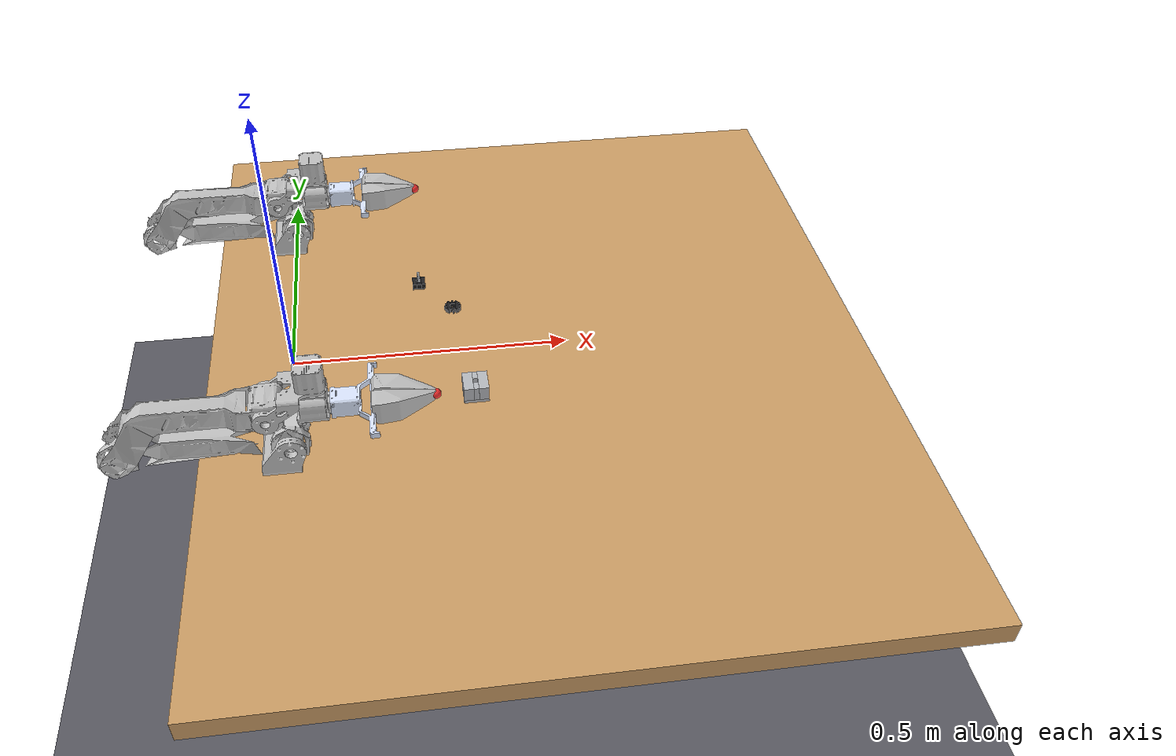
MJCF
<mujoco model="panthera_bimanual">
  <compiler angle="radian"/>

  <option impratio="100" integrator="implicitfast" cone="elliptic"/>

  <size nkey="2"/>

  <visual>
    <global offwidth="1920" offheight="1080"/>
    <headlight ambient="0.15 0.15 0.15" diffuse="0.25 0.25 0.25"/>
  </visual>

  <default>
    <default class="left/main">
      <joint armature="0.05" damping="0.2" frictionloss="0.1"/>
      <general biastype="affine"/>
      <default class="left/visual">
        <geom type="mesh" contype="0" conaffinity="0" group="2" density="0"/>
      </default>
      <default class="left/collision">
        <geom type="mesh" condim="4" group="3" friction="1 0.05 0.001"/>
      </default>
    </default>
    <default class="right/main">
      <joint armature="0.05" damping="0.2" frictionloss="0.1"/>
      <general biastype="affine"/>
      <default class="right/visual">
        <geom type="mesh" contype="0" conaffinity="0" group="2" density="0"/>
      </default>
      <default class="right/collision">
        <geom type="mesh" condim="4" group="3" friction="1 0.05 0.001"/>
      </default>
    </default>
  </default>

  <asset>
    <mesh name="left/base_link" content_type="model/stl" file="meshes/visual/base_link.STL"/>
    <mesh name="left/link1" content_type="model/stl" file="meshes/visual/link1.STL"/>
    <mesh name="left/link2" content_type="model/stl" file="meshes/visual/link2.STL"/>
    <mesh name="left/link3" content_type="model/stl" file="meshes/visual/link3.STL"/>
    <mesh name="left/link4" content_type="model/stl" file="meshes/visual/link4.STL"/>
    <mesh name="left/link5" content_type="model/stl" file="meshes/visual/link5.STL"/>
    <mesh name="left/link6" content_type="model/stl" file="meshes/visual/link6.STL"/>
    <mesh name="left/L_finger" content_type="model/stl" file="meshes/visual/L_finger.STL"/>
    <mesh name="left/R_finger" content_type="model/stl" file="meshes/visual/R_finger.STL"/>
    <mesh name="left/gripper_center" content_type="model/stl" file="meshes/visual/gripper_center.STL"/>
    <mesh name="left/base_link_col" content_type="model/stl" file="meshes/collision/base_link.STL"/>
    <mesh name="left/link1_col" content_type="model/stl" file="meshes/collision/link1.STL"/>
    <mesh name="left/link2_col" content_type="model/stl" file="meshes/collision/link2.STL"/>
    <mesh name="left/link3_col" content_type="model/stl" file="meshes/collision/link3.STL"/>
    <mesh name="left/link4_col" content_type="model/stl" file="meshes/collision/link4.STL"/>
    <mesh name="left/link5_col" content_type="model/stl" file="meshes/collision/link5.STL"/>
    <mesh name="left/link6_col" content_type="model/stl" file="meshes/collision/link6.STL"/>
    <mesh name="left/L_finger_col" content_type="model/stl" file="meshes/collision/L_finger.STL"/>
    <mesh name="left/R_finger_col" content_type="model/stl" file="meshes/collision/R_finger.STL"/>
    <mesh name="left/gripper_center_col" content_type="model/stl" file="meshes/collision/gripper_center.STL"/>
    <mesh name="right/base_link" content_type="model/stl" file="meshes/visual/base_link.STL"/>
    <mesh name="right/link1" content_type="model/stl" file="meshes/visual/link1.STL"/>
    <mesh name="right/link2" content_type="model/stl" file="meshes/visual/link2.STL"/>
    <mesh name="right/link3" content_type="model/stl" file="meshes/visual/link3.STL"/>
    <mesh name="right/link4" content_type="model/stl" file="meshes/visual/link4.STL"/>
    <mesh name="right/link5" content_type="model/stl" file="meshes/visual/link5.STL"/>
    <mesh name="right/link6" content_type="model/stl" file="meshes/visual/link6.STL"/>
    <mesh name="right/L_finger" content_type="model/stl" file="meshes/visual/L_finger.STL"/>
    <mesh name="right/R_finger" content_type="model/stl" file="meshes/visual/R_finger.STL"/>
    <mesh name="right/gripper_center" content_type="model/stl" file="meshes/visual/gripper_center.STL"/>
    <mesh name="right/base_link_col" content_type="model/stl" file="meshes/collision/base_link.STL"/>
    <mesh name="right/link1_col" content_type="model/stl" file="meshes/collision/link1.STL"/>
    <mesh name="right/link2_col" content_type="model/stl" file="meshes/collision/link2.STL"/>
    <mesh name="right/link3_col" content_type="model/stl" file="meshes/collision/link3.STL"/>
    <mesh name="right/link4_col" content_type="model/stl" file="meshes/collision/link4.STL"/>
    <mesh name="right/link5_col" content_type="model/stl" file="meshes/collision/link5.STL"/>
    <mesh name="right/link6_col" content_type="model/stl" file="meshes/collision/link6.STL"/>
    <mesh name="right/L_finger_col" content_type="model/stl" file="meshes/collision/L_finger.STL"/>
    <mesh name="right/R_finger_col" content_type="model/stl" file="meshes/collision/R_finger.STL"/>
    <mesh name="right/gripper_center_col" content_type="model/stl" file="meshes/collision/gripper_center.STL"/>
  </asset>

  <worldbody>
    <geom name="floor" size="0 0 0.05" pos="0 0 -0.75" type="plane" rgba="0.35 0.35 0.38 1"/>
    <camera name="overhead" quat="0.60804 0.360953 -0.360953 -0.60804" pos="-0.8 0 1" fovy="35"/>
    <light pos="0.45 0 2" diffuse="0.45 0.45 0.45" type="directional"/>
    <light pos="0.45 0.5 1.5" dir="0 -0.287348 -0.957826" diffuse="0.15 0.15 0.15"/>
    <body name="table" pos="0.45 0 -0.02">
      <geom name="table_top" size="0.6 0.7 0.02" type="box" friction="0.4 0.02 0.0005" rgba="0.8 0.62 0.4 1"/>
    </body>
    <body name="carrier" pos="0.32 -0.12 0.016">
      <joint name="carrier" type="free"/>
      <geom name="carrier" size="0.022 0.022 0.003" pos="0 0 -0.013" type="box" condim="6" friction="0.8 0.08 0.004" solref="0.005" solimp="0.98 0.99" rgba="0.72 0.73 0.75 1" density="2700"/>
      <geom name="carrier_top_x+1" size="0.00875 0.022 0.013" pos="0.01325 0 0.003" type="box" condim="6" friction="0.8 0.08 0.004" solref="0.005" solimp="0.98 0.99" rgba="0.72 0.73 0.75 1" density="2700"/>
      <geom name="carrier_top_y+1" size="0.0045 0.00875 0.013" pos="0 0.01325 0.003" type="box" condim="6" friction="0.8 0.08 0.004" solref="0.005" solimp="0.98 0.99" rgba="0.72 0.73 0.75 1" density="2700"/>
      <geom name="carrier_top_x-1" size="0.00875 0.022 0.013" pos="-0.01325 0 0.003" type="box" condim="6" friction="0.8 0.08 0.004" solref="0.005" solimp="0.98 0.99" rgba="0.72 0.73 0.75 1" density="2700"/>
      <geom name="carrier_top_y-1" size="0.0045 0.00875 0.013" pos="0 -0.01325 0.003" type="box" condim="6" friction="0.8 0.08 0.004" solref="0.005" solimp="0.98 0.99" rgba="0.72 0.73 0.75 1" density="2700"/>
      <site name="carrier_hole" size="0.002" pos="0 0 0.016" group="4"/>
    </body>
    <body name="gear" pos="0.3 0.12 0.004">
      <joint name="gear" type="free"/>
      <geom name="gear_x+1" size="0.003 0.011 0.004" pos="0.008 0 0" type="box" condim="6" friction="0.8 0.08 0.004" solref="0.005" solimp="0.98 0.99" rgba="0.12 0.12 0.13 1" density="1200"/>
      <geom name="gear_y+1" size="0.005 0.003 0.004" pos="0 0.008 0" type="box" condim="6" friction="0.8 0.08 0.004" solref="0.005" solimp="0.98 0.99" rgba="0.12 0.12 0.13 1" density="1200"/>
      <geom name="gear_x-1" size="0.003 0.011 0.004" pos="-0.008 0 0" type="box" condim="6" friction="0.8 0.08 0.004" solref="0.005" solimp="0.98 0.99" rgba="0.12 0.12 0.13 1" density="1200"/>
      <geom name="gear_y-1" size="0.005 0.003 0.004" pos="0 -0.008 0" type="box" condim="6" friction="0.8 0.08 0.004" solref="0.005" solimp="0.98 0.99" rgba="0.12 0.12 0.13 1" density="1200"/>
      <geom size="0.0022 0.0015 0.0036" pos="0.01375 0 0" type="box" contype="0" conaffinity="0" group="2" rgba="0.12 0.12 0.13 1"/>
      <geom size="0.0022 0.0015 0.0036" pos="0.0119078 0.006875 0" quat="0.965926 0 0 0.258819" type="box" contype="0" conaffinity="0" group="2" rgba="0.12 0.12 0.13 1"/>
      <geom size="0.0022 0.0015 0.0036" pos="0.006875 0.0119078 0" quat="0.866025 0 0 0.5" type="box" contype="0" conaffinity="0" group="2" rgba="0.12 0.12 0.13 1"/>
      <geom size="0.0022 0.0015 0.0036" pos="0 0.01375 0" quat="0.707107 0 0 0.707107" type="box" contype="0" conaffinity="0" group="2" rgba="0.12 0.12 0.13 1"/>
      <geom size="0.0022 0.0015 0.0036" pos="-0.006875 0.0119078 0" quat="0.5 0 0 0.866025" type="box" contype="0" conaffinity="0" group="2" rgba="0.12 0.12 0.13 1"/>
      <geom size="0.0022 0.0015 0.0036" pos="-0.0119078 0.006875 0" quat="0.258819 0 0 0.965926" type="box" contype="0" conaffinity="0" group="2" rgba="0.12 0.12 0.13 1"/>
      <geom size="0.0022 0.0015 0.0036" pos="-0.01375 0 0" quat="0 0 0 1" type="box" contype="0" conaffinity="0" group="2" rgba="0.12 0.12 0.13 1"/>
      <geom size="0.0022 0.0015 0.0036" pos="-0.0119078 -0.006875 0" quat="-0.258819 0 0 0.965926" type="box" contype="0" conaffinity="0" group="2" rgba="0.12 0.12 0.13 1"/>
      <geom size="0.0022 0.0015 0.0036" pos="-0.006875 -0.0119078 0" quat="-0.5 0 0 0.866025" type="box" contype="0" conaffinity="0" group="2" rgba="0.12 0.12 0.13 1"/>
      <geom size="0.0022 0.0015 0.0036" pos="0 -0.01375 0" quat="-0.707107 0 0 0.707107" type="box" contype="0" conaffinity="0" group="2" rgba="0.12 0.12 0.13 1"/>
      <geom size="0.0022 0.0015 0.0036" pos="0.006875 -0.0119078 0" quat="-0.866025 0 0 0.5" type="box" contype="0" conaffinity="0" group="2" rgba="0.12 0.12 0.13 1"/>
      <geom size="0.0022 0.0015 0.0036" pos="0.0119078 -0.006875 0" quat="-0.965926 0 0 0.258819" type="box" contype="0" conaffinity="0" group="2" rgba="0.12 0.12 0.13 1"/>
      <site name="gear_bore" size="0.002" pos="0 0 0.004" group="4"/>
    </body>
    <body name="pin_stand" pos="0.24 0.2 0.006">
      <geom name="pin_stand_floor" size="0.012 0.012 0.001" pos="0 0 -0.005" type="box" rgba="0.12 0.12 0.13 1"/>
      <geom name="pin_stand_x+1" size="0.00375 0.012 0.005" pos="0.00825 0 0.001" type="box" rgba="0.12 0.12 0.13 1"/>
      <geom name="pin_stand_y+1" size="0.0045 0.00375 0.005" pos="0 0.00825 0.001" type="box" rgba="0.12 0.12 0.13 1"/>
      <geom name="pin_stand_x-1" size="0.00375 0.012 0.005" pos="-0.00825 0 0.001" type="box" rgba="0.12 0.12 0.13 1"/>
      <geom name="pin_stand_y-1" size="0.0045 0.00375 0.005" pos="0 -0.00825 0.001" type="box" rgba="0.12 0.12 0.13 1"/>
    </body>
    <body name="pin" pos="0.24 0.2 0.0175">
      <joint name="pin" type="free"/>
      <geom name="pin" size="0.0025 0.013" type="capsule" condim="6" friction="0.8 0.08 0.004" solref="0.005" solimp="0.98 0.99" rgba="0.72 0.73 0.75 1" density="7800"/>
      <site name="pin_tip" size="0.002" pos="0 0 -0.0155" group="4"/>
    </body>
    <frame pos="0 0.2875 0">
      <body name="left/link1" pos="0 0 0.0584">
        <inertial pos="0.00278873 -0.00094387 0.0249184" quat="0.692661 0.650108 0.225614 -0.216051" mass="0.281016" diaginertia="0.000421358 0.000343661 0.000213101"/>
        <joint name="left/joint1" range="-2.4 2.4" actuatorfrcrange="-21 21" armature="0.05" damping="0.2" frictionloss="0.1"/>
        <geom class="left/visual" quat="1 0 0 0" rgba="0.752941 0.752941 0.752941 1" mesh="left/link1"/>
        <geom class="left/collision" quat="1 0 0 0" mesh="left/link1_col"/>
        <body name="left/link2" pos="0.018199 0 0.053">
          <inertial pos="-0.129362 -0.00213339 7.183e-05" quat="0.00988446 0.706238 0.00888299 0.70785" mass="1.51651" diaginertia="0.0227212 0.0226105 0.00044695"/>
          <joint name="left/joint2" range="0 3.2" actuatorfrcrange="-36 36" armature="0.05" damping="0.2" frictionloss="0.1" axis="0 1 0"/>
          <geom class="left/visual" pos="0 0 0" quat="1 0 0 0" rgba="0.752941 0.752941 0.752941 1" mesh="left/link2"/>
          <geom class="left/collision" pos="0 0 0" quat="1 0 0 0" mesh="left/link2_col"/>
          <body name="left/link3" pos="-0.26 0 0">
            <inertial pos="0.163431 -0.00164646 0.0533743" quat="-0.0903299 0.649643 -0.0759146 0.751027" mass="0.669178" diaginertia="0.00543522 0.00538336 0.00051072"/>
            <joint name="left/joint3" range="0 4" actuatorfrcrange="-36 36" armature="0.05" damping="0.2" frictionloss="0.1" axis="0 -1 0"/>
            <geom class="left/visual" pos="0 0 0" quat="1 0 0 0" rgba="0.752941 0.752941 0.752941 1" mesh="left/link3"/>
            <geom class="left/collision" pos="0 0 0" quat="1 0 0 0" mesh="left/link3_col"/>
            <body name="left/link4" pos="0.23 0 0.06">
              <inertial pos="0.0524013 -0.00055249 0.0409418" quat="-0.0119308 0.442275 0.0207973 0.896559" mass="0.307805" diaginertia="0.000483913 0.000395159 0.000124278"/>
              <joint name="left/joint4" range="-1.6 1.6" actuatorfrcrange="-21 21" armature="0.05" damping="0.2" frictionloss="0.1" axis="0 -1 0"/>
              <geom class="left/visual" pos="0 0 0" quat="1 0 0 0" rgba="0.752941 0.752941 0.752941 1" mesh="left/link4"/>
              <geom class="left/collision" pos="0 0 0" quat="1 0 0 0" mesh="left/link4_col"/>
              <body name="left/link5" pos="0.07 0 0.036319">
                <inertial pos="0.00303007 8.509e-05 -0.0362408" quat="0.705992 0.0034971 0.00378767 0.708201" mass="0.237111" diaginertia="5.77301e-05 4.81515e-05 3.35885e-05"/>
                <joint name="left/joint5" range="-1.7 1.7" actuatorfrcrange="-10 10" armature="0.05" damping="0.2" frictionloss="0.1" axis="0 0 -1"/>
                <geom class="left/visual" quat="1 0 0 0" rgba="0.752941 0.752941 0.752941 1" mesh="left/link5"/>
                <geom class="left/collision" quat="1 0 0 0" mesh="left/link5_col"/>
                <body name="left/link6" pos="0.02345 0 -0.039">
                  <inertial pos="0.0365806 -4.4236e-05 -3.47544e-05" quat="0.512706 0.486973 -0.500963 0.499025" mass="0.106038" diaginertia="0.00177399 0.00116496 0.000713576"/>
                  <joint name="left/joint6" range="-2.5 2.5" actuatorfrcrange="-10 10" armature="0.05" damping="0.2" frictionloss="0.1" axis="1 0 0"/>
                  <geom class="left/visual" rgba="0.752941 0.752941 0.752941 1" mesh="left/link6"/>
                  <geom class="left/collision" mesh="left/link6_col"/>
                  <geom class="left/visual" pos="0.165 0 0" quat="1 0 0 0" rgba="0.866667 0.909804 1 1" mesh="left/gripper_center"/>
                  <geom class="left/collision" pos="0.165 0 0" quat="1 0 0 0" mesh="left/gripper_center_col"/>
                  <site name="left/grip_site" size="0.008" pos="0.165 0 0" group="1" rgba="1 0.2 0.2 1"/>
                  <camera name="left/wrist" quat="0.6015 0.371749 -0.371749 -0.6015" pos="0.055 0 0.055" fovy="70"/>
                  <body name="left/L_finger" pos="0.165 0 0">
                    <inertial pos="-0.0685513 0.0168638 -0.000510235" quat="0.462198 0.46404 0.540064 0.528556" mass="0.127458" diaginertia="5.21681e-05 4.65029e-05 2.2273e-05"/>
                    <joint name="left/L_finger_joint" type="slide" range="0 0.04" actuatorfrcrange="-100 100" armature="0.05" damping="0.2" frictionloss="0.1" axis="0 1 0"/>
                    <geom class="left/visual" pos="0 0 0" quat="1 0 0 0" rgba="0.752941 0.752941 0.752941 1" mesh="left/L_finger"/>
                    <geom class="left/collision" pos="0 0 0" quat="1 0 0 0" contype="0" conaffinity="0" mesh="left/L_finger_col"/>
                    <geom name="left/L_finger_pad" size="0.0225 0.002 0.01" pos="-0.0225 0.0015 0" type="box" condim="6" group="3" friction="2 0.2 0.01" solref="0.005" solimp="0.98 0.99"/>
                    <geom name="left/L_finger_bulk" size="0.035 0.015 0.015" pos="-0.058 0.019 0" type="box" condim="4" group="3" friction="1 0.05 0.001"/>
                    <site name="left/L_finger_tip" pos="0.005 0 0" group="4"/>
                  </body>
                  <body name="left/R_finger" pos="0.165 0 0">
                    <inertial pos="-0.0685513 -0.0168638 0.000510465" quat="0.540064 0.528556 0.462198 0.46404" mass="0.127458" diaginertia="5.21681e-05 4.65029e-05 2.2273e-05"/>
                    <joint name="left/R_finger_joint" type="slide" range="-0.04 0" actuatorfrcrange="-100 100" armature="0.05" damping="0.2" frictionloss="0.1" axis="0 1 0"/>
                    <geom class="left/visual" pos="0 0 0" quat="1 0 0 0" rgba="0.752941 0.752941 0.752941 1" mesh="left/R_finger"/>
                    <geom class="left/collision" pos="0 0 0" quat="1 0 0 0" contype="0" conaffinity="0" mesh="left/R_finger_col"/>
                    <geom name="left/R_finger_pad" size="0.0225 0.002 0.01" pos="-0.0225 -0.0015 0" type="box" condim="6" group="3" friction="2 0.2 0.01" solref="0.005" solimp="0.98 0.99"/>
                    <geom name="left/R_finger_bulk" size="0.035 0.015 0.015" pos="-0.058 -0.019 0" type="box" condim="4" group="3" friction="1 0.05 0.001"/>
                    <site name="left/R_finger_tip" pos="0.005 0 0" group="4"/>
                  </body>
                </body>
              </body>
            </body>
          </body>
        </body>
      </body>
    </frame>
    <frame pos="0 -0.2875 0">
      <body name="right/link1" pos="0 0 0.0584">
        <inertial pos="0.00278873 -0.00094387 0.0249184" quat="0.692661 0.650108 0.225614 -0.216051" mass="0.281016" diaginertia="0.000421358 0.000343661 0.000213101"/>
        <joint name="right/joint1" range="-2.4 2.4" actuatorfrcrange="-21 21" armature="0.05" damping="0.2" frictionloss="0.1"/>
        <geom class="right/visual" quat="1 0 0 0" rgba="0.752941 0.752941 0.752941 1" mesh="right/link1"/>
        <geom class="right/collision" quat="1 0 0 0" mesh="right/link1_col"/>
        <body name="right/link2" pos="0.018199 0 0.053">
          <inertial pos="-0.129362 -0.00213339 7.183e-05" quat="0.00988446 0.706238 0.00888299 0.70785" mass="1.51651" diaginertia="0.0227212 0.0226105 0.00044695"/>
          <joint name="right/joint2" range="0 3.2" actuatorfrcrange="-36 36" armature="0.05" damping="0.2" frictionloss="0.1" axis="0 1 0"/>
          <geom class="right/visual" pos="0 0 0" quat="1 0 0 0" rgba="0.752941 0.752941 0.752941 1" mesh="right/link2"/>
          <geom class="right/collision" pos="0 0 0" quat="1 0 0 0" mesh="right/link2_col"/>
          <body name="right/link3" pos="-0.26 0 0">
            <inertial pos="0.163431 -0.00164646 0.0533743" quat="-0.0903299 0.649643 -0.0759146 0.751027" mass="0.669178" diaginertia="0.00543522 0.00538336 0.00051072"/>
            <joint name="right/joint3" range="0 4" actuatorfrcrange="-36 36" armature="0.05" damping="0.2" frictionloss="0.1" axis="0 -1 0"/>
            <geom class="right/visual" pos="0 0 0" quat="1 0 0 0" rgba="0.752941 0.752941 0.752941 1" mesh="right/link3"/>
            <geom class="right/collision" pos="0 0 0" quat="1 0 0 0" mesh="right/link3_col"/>
            <body name="right/link4" pos="0.23 0 0.06">
              <inertial pos="0.0524013 -0.00055249 0.0409418" quat="-0.0119308 0.442275 0.0207973 0.896559" mass="0.307805" diaginertia="0.000483913 0.000395159 0.000124278"/>
              <joint name="right/joint4" range="-1.6 1.6" actuatorfrcrange="-21 21" armature="0.05" damping="0.2" frictionloss="0.1" axis="0 -1 0"/>
              <geom class="right/visual" pos="0 0 0" quat="1 0 0 0" rgba="0.752941 0.752941 0.752941 1" mesh="right/link4"/>
              <geom class="right/collision" pos="0 0 0" quat="1 0 0 0" mesh="right/link4_col"/>
              <body name="right/link5" pos="0.07 0 0.036319">
                <inertial pos="0.00303007 8.509e-05 -0.0362408" quat="0.705992 0.0034971 0.00378767 0.708201" mass="0.237111" diaginertia="5.77301e-05 4.81515e-05 3.35885e-05"/>
                <joint name="right/joint5" range="-1.7 1.7" actuatorfrcrange="-10 10" armature="0.05" damping="0.2" frictionloss="0.1" axis="0 0 -1"/>
                <geom class="right/visual" quat="1 0 0 0" rgba="0.752941 0.752941 0.752941 1" mesh="right/link5"/>
                <geom class="right/collision" quat="1 0 0 0" mesh="right/link5_col"/>
                <body name="right/link6" pos="0.02345 0 -0.039">
                  <inertial pos="0.0365806 -4.4236e-05 -3.47544e-05" quat="0.512706 0.486973 -0.500963 0.499025" mass="0.106038" diaginertia="0.00177399 0.00116496 0.000713576"/>
                  <joint name="right/joint6" range="-2.5 2.5" actuatorfrcrange="-10 10" armature="0.05" damping="0.2" frictionloss="0.1" axis="1 0 0"/>
                  <geom class="right/visual" rgba="0.752941 0.752941 0.752941 1" mesh="right/link6"/>
                  <geom class="right/collision" mesh="right/link6_col"/>
                  <geom class="right/visual" pos="0.165 0 0" quat="1 0 0 0" rgba="0.866667 0.909804 1 1" mesh="right/gripper_center"/>
                  <geom class="right/collision" pos="0.165 0 0" quat="1 0 0 0" mesh="right/gripper_center_col"/>
                  <site name="right/grip_site" size="0.008" pos="0.165 0 0" group="1" rgba="1 0.2 0.2 1"/>
                  <camera name="right/wrist" quat="0.6015 0.371749 -0.371749 -0.6015" pos="0.055 0 0.055" fovy="70"/>
                  <body name="right/L_finger" pos="0.165 0 0">
                    <inertial pos="-0.0685513 0.0168638 -0.000510235" quat="0.462198 0.46404 0.540064 0.528556" mass="0.127458" diaginertia="5.21681e-05 4.65029e-05 2.2273e-05"/>
                    <joint name="right/L_finger_joint" type="slide" range="0 0.04" actuatorfrcrange="-100 100" armature="0.05" damping="0.2" frictionloss="0.1" axis="0 1 0"/>
                    <geom class="right/visual" pos="0 0 0" quat="1 0 0 0" rgba="0.752941 0.752941 0.752941 1" mesh="right/L_finger"/>
                    <geom class="right/collision" pos="0 0 0" quat="1 0 0 0" contype="0" conaffinity="0" mesh="right/L_finger_col"/>
                    <geom name="right/L_finger_pad" size="0.0225 0.002 0.01" pos="-0.0225 0.0015 0" type="box" condim="6" group="3" friction="2 0.2 0.01" solref="0.005" solimp="0.98 0.99"/>
                    <geom name="right/L_finger_bulk" size="0.035 0.015 0.015" pos="-0.058 0.019 0" type="box" condim="4" group="3" friction="1 0.05 0.001"/>
                    <site name="right/L_finger_tip" pos="0.005 0 0" group="4"/>
                  </body>
                  <body name="right/R_finger" pos="0.165 0 0">
                    <inertial pos="-0.0685513 -0.0168638 0.000510465" quat="0.540064 0.528556 0.462198 0.46404" mass="0.127458" diaginertia="5.21681e-05 4.65029e-05 2.2273e-05"/>
                    <joint name="right/R_finger_joint" type="slide" range="-0.04 0" actuatorfrcrange="-100 100" armature="0.05" damping="0.2" frictionloss="0.1" axis="0 1 0"/>
                    <geom class="right/visual" pos="0 0 0" quat="1 0 0 0" rgba="0.752941 0.752941 0.752941 1" mesh="right/R_finger"/>
                    <geom class="right/collision" pos="0 0 0" quat="1 0 0 0" contype="0" conaffinity="0" mesh="right/R_finger_col"/>
                    <geom name="right/R_finger_pad" size="0.0225 0.002 0.01" pos="-0.0225 -0.0015 0" type="box" condim="6" group="3" friction="2 0.2 0.01" solref="0.005" solimp="0.98 0.99"/>
                    <geom name="right/R_finger_bulk" size="0.035 0.015 0.015" pos="-0.058 -0.019 0" type="box" condim="4" group="3" friction="1 0.05 0.001"/>
                    <site name="right/R_finger_tip" pos="0.005 0 0" group="4"/>
                  </body>
                </body>
              </body>
            </body>
          </body>
        </body>
      </body>
    </frame>
  </worldbody>

  <contact>
    <exclude body1="world" body2="left/link1"/>
    <exclude body1="world" body2="right/link1"/>
    <exclude body1="left/link6" body2="left/L_finger"/>
    <exclude body1="left/link6" body2="left/R_finger"/>
    <exclude body1="left/L_finger" body2="left/R_finger"/>
    <exclude body1="right/link6" body2="right/L_finger"/>
    <exclude body1="right/link6" body2="right/R_finger"/>
    <exclude body1="right/L_finger" body2="right/R_finger"/>
  </contact>

  <equality>
    <joint joint1="left/R_finger_joint" joint2="left/L_finger_joint" polycoef="0 -1 0 0 0"/>
    <joint joint1="right/R_finger_joint" joint2="right/L_finger_joint" polycoef="0 -1 0 0 0"/>
  </equality>

  <actuator>
    <general name="left/joint1" joint="left/joint1" ctrlrange="-2.4 2.4" forcerange="-21 21" biastype="affine" gainprm="3000" biasprm="0 -3000 -54"/>
    <general name="left/joint2" joint="left/joint2" ctrlrange="0 3.2" forcerange="-36 36" biastype="affine" gainprm="5000" biasprm="0 -5000 -90"/>
    <general name="left/joint3" joint="left/joint3" ctrlrange="0 4" forcerange="-36 36" biastype="affine" gainprm="4000" biasprm="0 -4000 -68"/>
    <general name="left/joint4" joint="left/joint4" ctrlrange="-1.6 1.6" forcerange="-21 21" biastype="affine" gainprm="1200" biasprm="0 -1200 -23"/>
    <general name="left/joint5" joint="left/joint5" ctrlrange="-1.7 1.7" forcerange="-10 10" biastype="affine" gainprm="800" biasprm="0 -800 -14"/>
    <general name="left/joint6" joint="left/joint6" ctrlrange="-2.5 2.5" forcerange="-10 10" biastype="affine" gainprm="800" biasprm="0 -800 -14"/>
    <general name="left/gripper" joint="left/L_finger_joint" ctrlrange="0 0.04" forcerange="-3 3" biastype="affine" gainprm="400" biasprm="0 -400 -20"/>
    <general name="right/joint1" joint="right/joint1" ctrlrange="-2.4 2.4" forcerange="-21 21" biastype="affine" gainprm="3000" biasprm="0 -3000 -54"/>
    <general name="right/joint2" joint="right/joint2" ctrlrange="0 3.2" forcerange="-36 36" biastype="affine" gainprm="5000" biasprm="0 -5000 -90"/>
    <general name="right/joint3" joint="right/joint3" ctrlrange="0 4" forcerange="-36 36" biastype="affine" gainprm="4000" biasprm="0 -4000 -68"/>
    <general name="right/joint4" joint="right/joint4" ctrlrange="-1.6 1.6" forcerange="-21 21" biastype="affine" gainprm="1200" biasprm="0 -1200 -23"/>
    <general name="right/joint5" joint="right/joint5" ctrlrange="-1.7 1.7" forcerange="-10 10" biastype="affine" gainprm="800" biasprm="0 -800 -14"/>
    <general name="right/joint6" joint="right/joint6" ctrlrange="-2.5 2.5" forcerange="-10 10" biastype="affine" gainprm="800" biasprm="0 -800 -14"/>
    <general name="right/gripper" joint="right/L_finger_joint" ctrlrange="0 0.04" forcerange="-3 3" biastype="affine" gainprm="400" biasprm="0 -400 -20"/>
  </actuator>

  <keyframe>
    <key name="left/home" qpos="0.32 -0.12 0.016 1 0 0 0 0.3 0.12 0.004 1 0 0 0 0.24 0.2 0.0175 1 0 0 0 0 1.2 1.4 0 0 0 0.04 -0.04 0 0 0 0 0 0 0 0" ctrl="0 1.2 1.4 0 0 0 0.04 0 0 0 0 0 0 0"/>
    <key name="right/home" qpos="0.32 -0.12 0.016 1 0 0 0 0.3 0.12 0.004 1 0 0 0 0.24 0.2 0.0175 1 0 0 0 0 0 0 0 0 0 0 0 0 1.2 1.4 0 0 0 0.04 -0.04" ctrl="0 0 0 0 0 0 0 0 1.2 1.4 0 0 0 0.04"/>
  </keyframe>
</mujoco>
